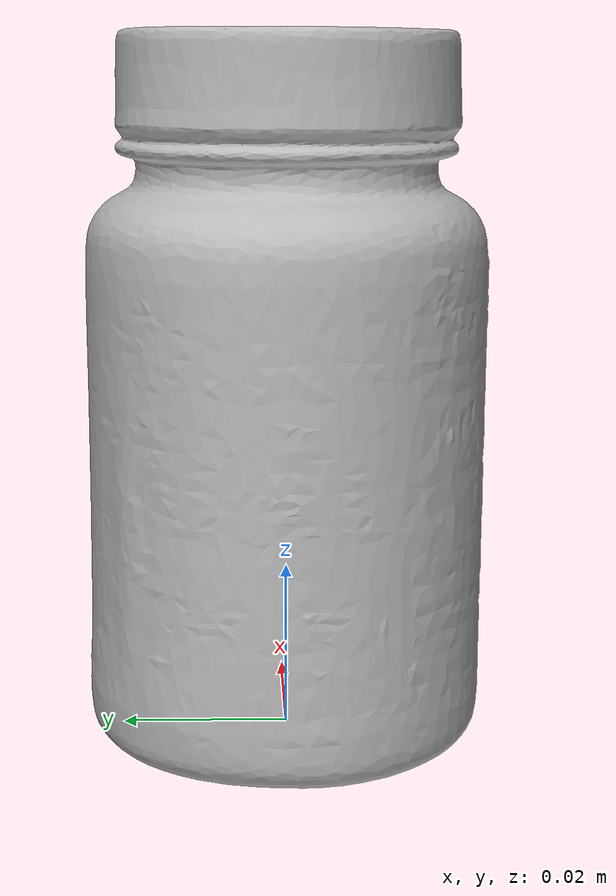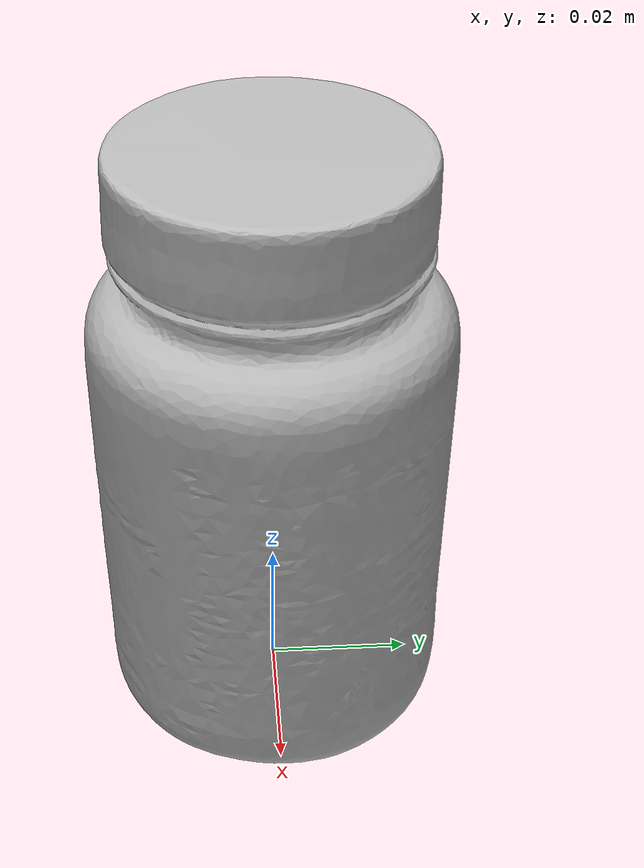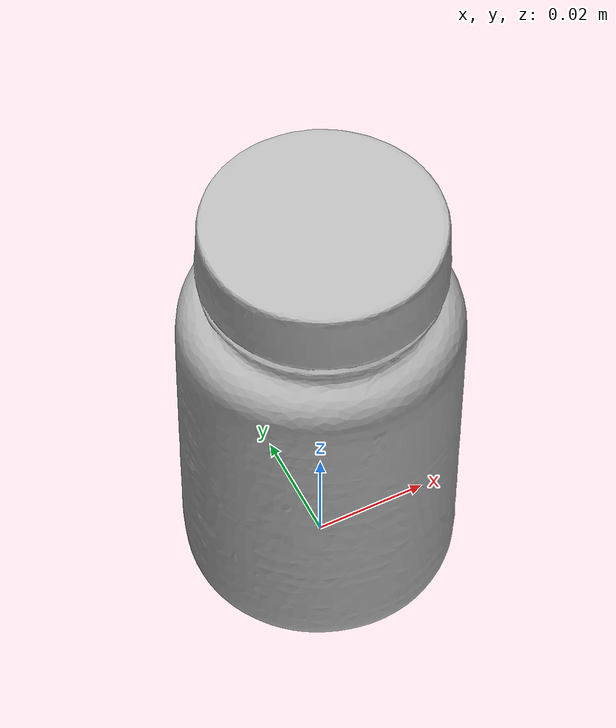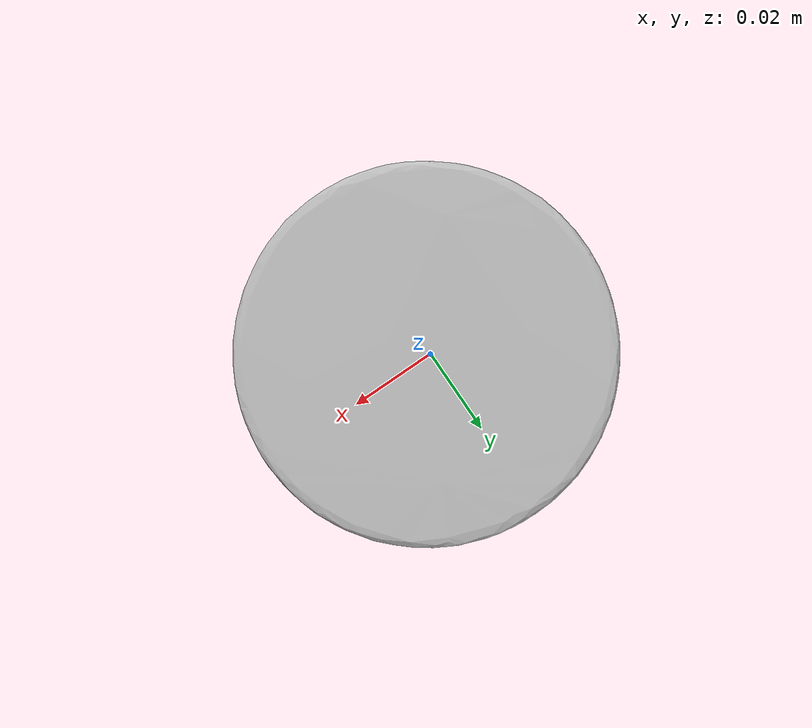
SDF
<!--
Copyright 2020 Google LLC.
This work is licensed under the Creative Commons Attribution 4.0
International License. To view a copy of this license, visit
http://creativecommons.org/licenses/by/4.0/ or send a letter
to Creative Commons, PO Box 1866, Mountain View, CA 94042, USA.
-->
<?xml version="1.0" ?>
<sdf version="1.6">
  <model name="Room_Essentials_Dish_Drainer_Collapsible_White">
    <link name="link_0">
      <visual name="visual">
        <geometry>
          <mesh>
            <uri>meshes/model.obj</uri>
          </mesh>
        </geometry>
      </visual>
      <collision name="collision_0">
        <geometry>
          <mesh>
            <uri>meshes/model.obj</uri>
          </mesh>
        </geometry>
      </collision>
    </link>
  </model>
</sdf>
